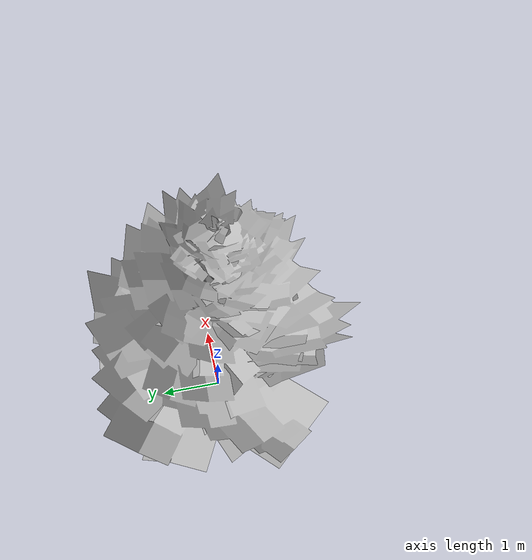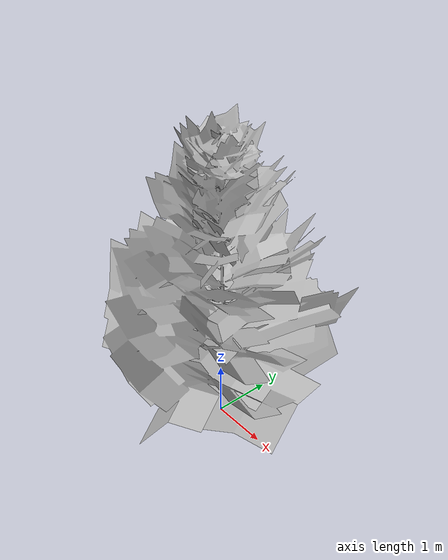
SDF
<?xml version="1.0" ?>
<sdf version="1.5">
  <model name="Tree 5">
     <static>true</static>
    <pose frame=''>0 0 0 1.57079 0 0</pose>
    <link name="link">
      <pose frame=''>0 0 0 0 0 0</pose>
      <collision name="collision">
        <geometry>
          <mesh>
            <scale>5 5 5</scale>
            <uri>model://tree_5/meshes/tree.obj</uri>
          </mesh>
        </geometry>
      </collision>
      <visual name="visual">
        <geometry>
          <mesh>

            <scale>5 5 5</scale>
            <uri>model://tree_5/meshes/tree.obj</uri>
          </mesh>
        </geometry>
      </visual>
    </link>
  </model>
</sdf>
